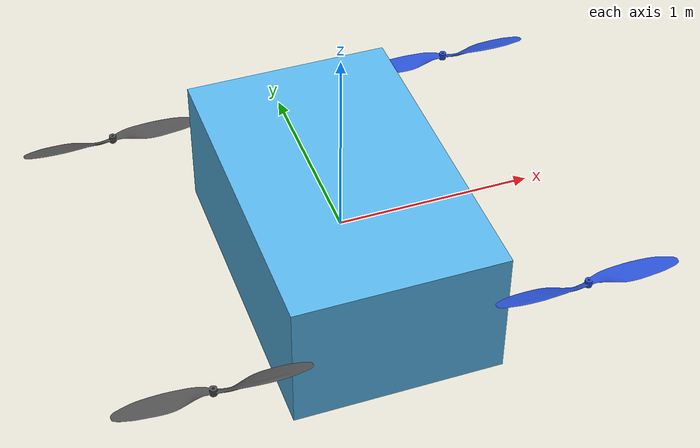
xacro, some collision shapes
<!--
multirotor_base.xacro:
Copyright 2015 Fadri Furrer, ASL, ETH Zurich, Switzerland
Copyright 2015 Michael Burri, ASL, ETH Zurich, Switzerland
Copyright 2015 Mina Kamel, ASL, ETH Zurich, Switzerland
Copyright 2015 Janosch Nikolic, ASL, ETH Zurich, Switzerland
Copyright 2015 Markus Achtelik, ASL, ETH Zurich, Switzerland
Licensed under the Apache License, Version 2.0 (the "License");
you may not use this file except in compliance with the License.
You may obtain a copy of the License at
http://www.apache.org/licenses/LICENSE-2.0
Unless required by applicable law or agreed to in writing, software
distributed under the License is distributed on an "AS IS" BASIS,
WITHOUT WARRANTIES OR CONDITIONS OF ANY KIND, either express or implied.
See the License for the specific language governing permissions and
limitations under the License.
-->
<?xml version="1.0"?>

<robot name="eg5" xmlns:xacro="http://ros.org/wiki/xacro">
  <!-- Arguments -->
  <xacro:arg name="namespace" default="eg5"/>
  <xacro:arg name="visual_material" default="Black"/>

  <!-- Properties -->
  <xacro:property name="namespace" value="eg5" />
  <xacro:property name="rotor_velocity_slowdown_sim" value="10" />
  <xacro:property name="mesh_file" value="if750a_fix.stl" />
  <xacro:property name="mesh_scale" value="0.00175 0.00175 0.00175"/>
  <xacro:property name="mesh_scale_prop" value="3.6 3.6 3.6"/>
  <xacro:property name="mass" value="19.1" /> <!-- [kg] -->
  <xacro:property name="body_length" value="1.06" />
  <xacro:property name="body_width" value="1.69" />
  <xacro:property name="body_height" value="0.7" />
  <xacro:property name="mass_rotor" value="0.25" /> <!-- [kg] -->
  <xacro:property name="arm_length_front_x" value="0.9125" />
  <xacro:property name="arm_length_back_x" value="0.9125" />
  <xacro:property name="arm_length_front_y" value="0.9125" />
  <xacro:property name="arm_length_back_y" value="0.9125" />
  <xacro:property name="rotor_front_offset_top" value="0.15" />
  <xacro:property name="rotor_back_offset_top" value="0.08" />
  <xacro:property name="radius_rotor" value="0.457" />
  <xacro:property name="motor_constant" value="0.00025" /> <!-- [kg.m/s^2] -->
  <xacro:property name="moment_constant" value="0.016" />
  <xacro:property name="time_constant_up" value="0.0125" />
  <xacro:property name="time_constant_down" value="0.025" />
  <xacro:property name="max_rot_velocity" value="3500" /> <!-- [rad/s] -->
  <xacro:property name="sin30" value="0.5" />
  <xacro:property name="cos30" value="0.866025403784" />
  <xacro:property name="sqrt2" value="1.4142135623730951" />
  <xacro:property name="rotor_drag_coefficient" value="0.0029" />
  <xacro:property name="rolling_moment_coefficient" value="0.0000036" />
  <xacro:property name="color" value="$(arg visual_material)" />

  <!-- Property Blocks -->
  <xacro:property name="body_inertia">
    <inertia ixx="4.877" ixy="0.0" ixz="0.0" iyy="6.42" iyz="0.0" izz="13.68" /> <!-- [kg.m^2] [kg.m^2] [kg.m^2] [kg.m^2] [kg.m^2] [kg.m^2] -->
  </xacro:property>

  <!-- inertia of a single rotor, assuming it is a cuboid. Height=3mm, width=15mm -->
  <xacro:property name="rotor_inertia">
    <inertia
    ixx="${1/12 * mass_rotor * (0.015 * 0.015 + 0.003 * 0.003) * rotor_velocity_slowdown_sim}"
    iyy="${1/12 * mass_rotor * (4 * radius_rotor * radius_rotor + 0.003 * 0.003) * rotor_velocity_slowdown_sim}"
    izz="${1/12 * mass_rotor * (4 * radius_rotor * radius_rotor + 0.015 * 0.015) * rotor_velocity_slowdown_sim}"
    ixy="0.0" ixz="0.0"  iyz="0.0" /> <!-- [kg.m^2] [kg.m^2] [kg.m^2] [kg.m^2] [kg.m^2] [kg.m^2] -->
  </xacro:property>

  <!-- Included URDF Files -->
  <xacro:include filename="$(find drone_gazebo)/models/eg5/urdf/multirotor_base.xacro" />

  <!-- Instantiate multirotor_base_macro once -->
  <xacro:multirotor_base_macro
    robot_namespace="${namespace}"
    mass="${mass}"
    body_length="${body_length}"
    body_width="${body_width}"
    body_height="${body_height}"
    mesh_file="${mesh_file}"
    mesh_scale="${mesh_scale}"
    color="${color}"
    >
    <xacro:insert_block name="body_inertia" />
  </xacro:multirotor_base_macro>

  <!-- Instantiate rotors -->
  <xacro:vertical_rotor
    robot_namespace="${namespace}"
    suffix="front_right"
    direction="ccw"
    motor_constant="${motor_constant}"
    moment_constant="${moment_constant}"
    parent="base_link"
    mass_rotor="${mass_rotor}"
    radius_rotor="${radius_rotor}"
    time_constant_up="${time_constant_up}"
    time_constant_down="${time_constant_down}"
    max_rot_velocity="${max_rot_velocity}"
    motor_number="0"
    rotor_drag_coefficient="${rotor_drag_coefficient}"
    rolling_moment_coefficient="${rolling_moment_coefficient}"
    mesh="iris_prop"
    mesh_scale="${mesh_scale_prop}"
    color="Blue">
    <origin xyz="${arm_length_front_x} -${arm_length_front_y} ${rotor_front_offset_top}" rpy="0 0 0" />
    <xacro:insert_block name="rotor_inertia" />
  </xacro:vertical_rotor>

  <xacro:vertical_rotor
    robot_namespace="${namespace}"
    suffix="back_left"
    direction="ccw"
    motor_constant="${motor_constant}"
    moment_constant="${moment_constant}"
    parent="base_link"
    mass_rotor="${mass_rotor}"
    radius_rotor="${radius_rotor}"
    time_constant_up="${time_constant_up}"
    time_constant_down="${time_constant_down}"
    max_rot_velocity="${max_rot_velocity}"
    motor_number="1"
    rotor_drag_coefficient="${rotor_drag_coefficient}"
    rolling_moment_coefficient="${rolling_moment_coefficient}"
    mesh="iris_prop"
    mesh_scale="${mesh_scale_prop}"
    color="DarkGrey">
    <origin xyz="-${arm_length_back_x} ${arm_length_back_y} ${rotor_back_offset_top}" rpy="0 0 0" />
    <xacro:insert_block name="rotor_inertia" />
  </xacro:vertical_rotor>

  <xacro:vertical_rotor robot_namespace="${namespace}"
    suffix="front_left"
    direction="cw"
    motor_constant="${motor_constant}"
    moment_constant="${moment_constant}"
    parent="base_link"
    mass_rotor="${mass_rotor}"
    radius_rotor="${radius_rotor}"
    time_constant_up="${time_constant_up}"
    time_constant_down="${time_constant_down}"
    max_rot_velocity="${max_rot_velocity}"
    motor_number="2"
    rotor_drag_coefficient="${rotor_drag_coefficient}"
    rolling_moment_coefficient="${rolling_moment_coefficient}"
    mesh="iris_prop"
    mesh_scale="${mesh_scale_prop}"
    color="Blue">
    <origin xyz="${arm_length_front_x} ${arm_length_front_y} ${rotor_front_offset_top}" rpy="0 0 0" />
    <xacro:insert_block name="rotor_inertia" />
  </xacro:vertical_rotor>

  <xacro:vertical_rotor robot_namespace="${namespace}"
    suffix="back_right"
    direction="cw"
    motor_constant="${motor_constant}"
    moment_constant="${moment_constant}"
    parent="base_link"
    mass_rotor="${mass_rotor}"
    radius_rotor="${radius_rotor}"
    time_constant_up="${time_constant_up}"
    time_constant_down="${time_constant_down}"
    max_rot_velocity="${max_rot_velocity}"
    motor_number="3"
    rotor_drag_coefficient="${rotor_drag_coefficient}"
    rolling_moment_coefficient="${rolling_moment_coefficient}"
    mesh="iris_prop"
    mesh_scale="${mesh_scale_prop}"
    color="DarkGrey">
    <origin xyz="-${arm_length_back_x} -${arm_length_back_y} ${rotor_back_offset_top}" rpy="0 0 0" />
    <xacro:insert_block name="rotor_inertia" />
  </xacro:vertical_rotor>

</robot>

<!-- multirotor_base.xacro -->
<robot xmlns:xacro="http://ros.org/wiki/xacro">
  <!-- Main multirotor link -->
  <xacro:macro name="multirotor_base_macro"
    params="robot_namespace mass body_length body_width body_height mesh_file mesh_scale color *inertia">
    <link name="base_link"></link>

    <joint name="base_joint" type="fixed">
      <origin xyz="0 0 0" rpy="0 0 0" />
      <parent link="base_link" />
      <child link="base_link_inertia" />
    </joint>

    <link name="base_link_inertia">
      <inertial>
        <mass value="${mass}" />  <!-- [kg] -->
        <origin xyz="0 0 0" />
        <xacro:insert_block name="inertia" />
      </inertial>

      <visual>
        <origin xyz="0 0 -0.35" rpy="1.5707 0 1.5707" />
        <geometry>
          <mesh filename="package://drone_gazebo/models/eg5/meshes/${mesh_file}"
            scale="${mesh_scale}" />

        </geometry>
      </visual>

      <collision>
        <origin xyz="0 0 0" rpy="0 0 0" />
        <geometry>
          <box size="${body_length} ${body_width} ${body_height}" />
        </geometry>
      </collision>
    </link>

    <!-- attach multirotor_base_plugin to the base_link -->
    <gazebo>
      <plugin filename="libgazebo_multirotor_base_plugin.so" name="rosbag">
        <robotNamespace>${robot_namespace}</robotNamespace>
        <linkName>base_link</linkName>
        <rotorVelocitySlowdownSim>${rotor_velocity_slowdown_sim}</rotorVelocitySlowdownSim>
      </plugin>
    </gazebo>
    <gazebo reference="base_link">
      <material>Gazebo/${color}</material>
      <collision name='base_link_inertia_collision'>
        <surface>
          <contact>
            <ode>
              <min_depth>0.001</min_depth>
              <max_vel>0.0</max_vel>
            </ode>
          </contact>
          <friction>
            <ode/>
          </friction>
        </surface>
      </collision>
   </gazebo>
  </xacro:macro>

  <!-- Rotor joint and link -->
  <xacro:macro name="vertical_rotor"
    params="robot_namespace suffix direction motor_constant moment_constant parent mass_rotor radius_rotor time_constant_up time_constant_down max_rot_velocity motor_number rotor_drag_coefficient rolling_moment_coefficient color mesh mesh_scale *origin *inertia">
    <joint name="rotor_${motor_number}_joint" type="continuous">
      <xacro:insert_block name="origin" />
      <axis xyz="0 0 1" />
      <!-- TODO(ff): not currently set because it's not yet supported -->
      <parent link="${parent}" />
      <child link="rotor_${motor_number}" />

    </joint>
    <!-- TODO(ff): not currently set because it's not yet supported -->
    <link name="rotor_${motor_number}">
      <inertial>
        <mass value="${mass_rotor}" /> <!-- [kg] -->
        <xacro:insert_block name="inertia" />
      </inertial>
      <visual>
        <geometry>

          <mesh filename="package://drone_gazebo/models/eg5/meshes/${mesh}_${direction}.dae"
            scale="${mesh_scale}" />
        </geometry>
      </visual>
      <collision>
        <geometry>
          <cylinder length="0.005" radius="${radius_rotor}" />
        </geometry>
      </collision>
    </link>
    <gazebo>
      <plugin name="${suffix}_motor_model" filename="libgazebo_motor_model.so">
        <robotNamespace>${robot_namespace}</robotNamespace>
        <jointName>rotor_${motor_number}_joint</jointName>
        <linkName>rotor_${motor_number}</linkName>
        <turningDirection>${direction}</turningDirection>
        <timeConstantUp>${time_constant_up}</timeConstantUp>
        <timeConstantDown>${time_constant_down}</timeConstantDown>
        <maxRotVelocity>${max_rot_velocity}</maxRotVelocity>
        <motorConstant>${motor_constant}</motorConstant>
        <momentConstant>${moment_constant}</momentConstant>
        <commandSubTopic>/gazebo/command/motor_speed</commandSubTopic>
        <motorNumber>${motor_number}</motorNumber>
        <rotorDragCoefficient>${rotor_drag_coefficient}</rotorDragCoefficient>
        <rollingMomentCoefficient>${rolling_moment_coefficient}</rollingMomentCoefficient>
        <motorSpeedPubTopic>/motor_speed/${motor_number}</motorSpeedPubTopic>
        <rotorVelocitySlowdownSim>${rotor_velocity_slowdown_sim}</rotorVelocitySlowdownSim>
      </plugin>
    </gazebo>
    <gazebo reference="rotor_${motor_number}">
      <material>Gazebo/${color}</material>
    </gazebo>
  </xacro:macro>
</robot>
